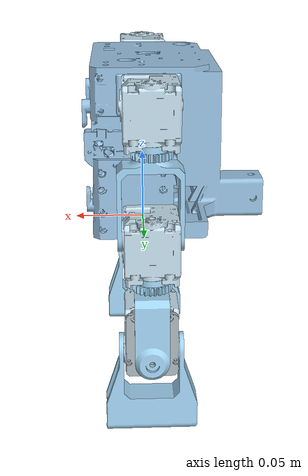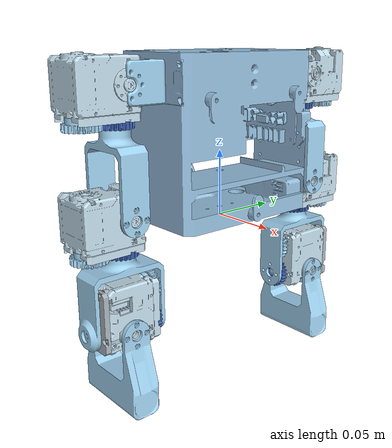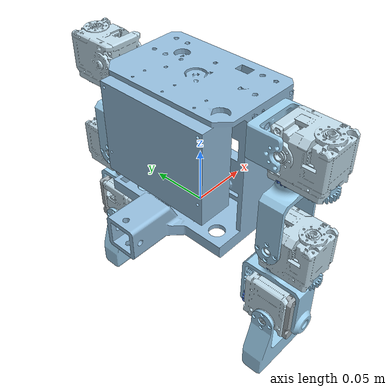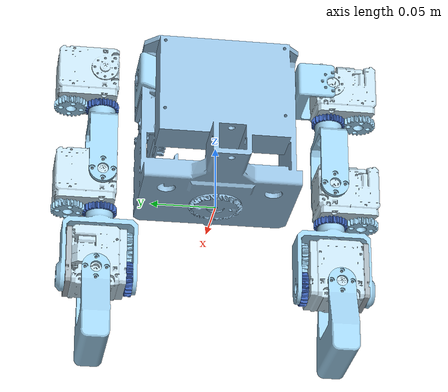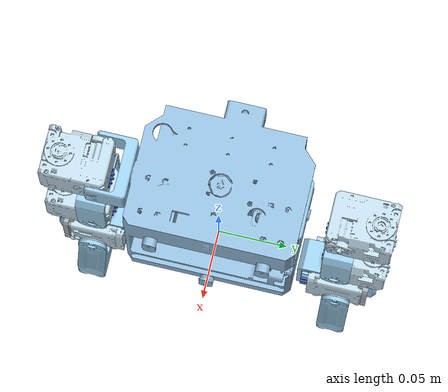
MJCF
<mujoco model="toddlerbot_arms_vis_scene">
    <include file="toddlerbot_arms_vis.xml" />
    <statistic center="0 0 -0.05" extent="0.6" />
    <visual>
        <headlight diffuse="0.6 0.6 0.6" ambient="0.3 0.3 0.3" specular="0 0 0" />
        <rgba haze="0.15 0.25 0.35 1" />
        <global azimuth="160" elevation="-20" offwidth="1280" offheight="720" />
    </visual>
    <worldbody>
        <light pos="0 0 1.5" dir="0 0 -1" directional="true" />
        <camera name="perspective" pos="0.7 -0.7 0.35" xyaxes="1 1 0 -1 1 3" mode="trackcom" />
        <camera name="side" pos="0 -1 0.25" xyaxes="1 0 0 0 1 3" mode="trackcom" />
        <camera name="top" pos="0 0 0.65" xyaxes="0 1 0 -1 0 0" mode="trackcom" />
        <camera name="front" pos="1 0 0.25" xyaxes="0 1 0 -1 0 3" mode="trackcom" />
    </worldbody>
</mujoco>

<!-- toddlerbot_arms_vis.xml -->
<mujoco model="toddlerbot_arms">
  <compiler angle="radian" autolimits="true" />

  <asset>
    <mesh name="torso_visual" file="../assemblies/toddlerbot_arms/meshes/torso_visual.stl" />
    <mesh name="left_sho_pitch_link_visual" file="../assemblies/left_arm_hand/meshes/left_sho_pitch_link_visual.stl" />
    <mesh name="left_2xl430_gears_visual" file="../assemblies/left_arm_hand/meshes/left_2xl430_gears_visual.stl" />
    <mesh name="left_spur_1m_24t_drive_visual" file="../assemblies/left_arm_hand/meshes/left_spur_1m_24t_drive_visual.stl" />
    <mesh name="left_spur_1m_24t_driven_visual" file="../assemblies/left_arm_hand/meshes/left_spur_1m_24t_driven_visual.stl" />
    <mesh name="left_sho_yaw_link_visual" file="../assemblies/left_arm_hand/meshes/left_sho_yaw_link_visual.stl" />
    <mesh name="left_2xl430_gears_2_visual" file="../assemblies/left_arm_hand/meshes/left_2xl430_gears_2_visual.stl" />
    <mesh name="left_spur_1m_24t_drive_2_visual" file="../assemblies/left_arm_hand/meshes/left_spur_1m_24t_drive_2_visual.stl" />
    <mesh name="left_spur_1m_24t_driven_2_visual" file="../assemblies/left_arm_hand/meshes/left_spur_1m_24t_driven_2_visual.stl" />
    <mesh name="left_elb_yaw_link_visual" file="../assemblies/left_arm_hand/meshes/left_elb_yaw_link_visual.stl" />
    <mesh name="left_spur_1m_24t_driven_3_visual" file="../assemblies/left_arm_hand/meshes/left_spur_1m_24t_driven_3_visual.stl" />
    <mesh name="left_2xl430_gears_3_visual" file="../assemblies/left_arm_hand/meshes/left_2xl430_gears_3_visual.stl" />
    <mesh name="left_spur_1m_24t_drive_3_visual" file="../assemblies/left_arm_hand/meshes/left_spur_1m_24t_drive_3_visual.stl" />
    <mesh name="left_hand_visual" file="../assemblies/left_arm_hand/meshes/left_hand_visual.stl" />
    <mesh name="left_wrist_bearing_plate_visual" file="../assemblies/left_arm_hand/meshes/left_wrist_bearing_plate_visual.stl" />
    <mesh name="right_sho_pitch_link_visual" file="../assemblies/right_arm_hand/meshes/right_sho_pitch_link_visual.stl" />
    <mesh name="right_2xl430_gears_visual" file="../assemblies/right_arm_hand/meshes/right_2xl430_gears_visual.stl" />
    <mesh name="right_spur_1m_24t_drive_visual" file="../assemblies/right_arm_hand/meshes/right_spur_1m_24t_drive_visual.stl" />
    <mesh name="right_spur_1m_24t_driven_visual" file="../assemblies/right_arm_hand/meshes/right_spur_1m_24t_driven_visual.stl" />
    <mesh name="right_sho_yaw_link_visual" file="../assemblies/right_arm_hand/meshes/right_sho_yaw_link_visual.stl" />
    <mesh name="right_2xl430_gears_2_visual" file="../assemblies/right_arm_hand/meshes/right_2xl430_gears_2_visual.stl" />
    <mesh name="right_spur_1m_24t_drive_2_visual" file="../assemblies/right_arm_hand/meshes/right_spur_1m_24t_drive_2_visual.stl" />
    <mesh name="right_spur_1m_24t_driven_2_visual" file="../assemblies/right_arm_hand/meshes/right_spur_1m_24t_driven_2_visual.stl" />
    <mesh name="right_elb_yaw_link_visual" file="../assemblies/right_arm_hand/meshes/right_elb_yaw_link_visual.stl" />
    <mesh name="right_spur_1m_24t_driven_3_visual" file="../assemblies/right_arm_hand/meshes/right_spur_1m_24t_driven_3_visual.stl" />
    <mesh name="right_2xl430_gears_3_visual" file="../assemblies/right_arm_hand/meshes/right_2xl430_gears_3_visual.stl" />
    <mesh name="right_spur_1m_24t_drive_3_visual" file="../assemblies/right_arm_hand/meshes/right_spur_1m_24t_drive_3_visual.stl" />
    <mesh name="right_hand_visual" file="../assemblies/right_arm_hand/meshes/right_hand_visual.stl" />
    <mesh name="right_wrist_bearing_plate_visual" file="../assemblies/right_arm_hand/meshes/right_wrist_bearing_plate_visual.stl" />
  </asset>

  <worldbody>
    <geom type="mesh" rgba="0.579662 0.741255 0.863591 1" mesh="torso_visual" class="visual" />
    <body name="sho_pitch_link" pos="-0.003 0.062 0.104237" quat="0.707107 -0.707107 0 0">
      <inertial pos="5.82542e-11 -5.12646e-05 0.00824408" quat="0.0155166 0.706937 0.0155166 0.706937" mass="0.0086" diaginertia="3.08064e-06 2.9104e-06 1.22729e-06" />
      <joint name="left_sho_pitch" pos="0 0 0" axis="0 0 1" range="-3.14159 1.5708" damping="0.127" armature="0.004" frictionloss="0.069" />
      <geom type="mesh" rgba="0.615686 0.811765 0.929412 1" mesh="left_sho_pitch_link_visual" class="visual" />
      <body name="2xl430_gears" pos="-0.019 0.001 0.027" quat="0 -0.707107 0 0.707107">
        <inertial pos="-0.0115932 -0.00242388 -0.0185511" quat="-0.0177754 0.697807 -0.134615 0.703298" mass="0.118" diaginertia="3.59197e-05 3.28027e-05 2.73617e-05" />
        <joint name="left_sho_roll" pos="0 0 0" axis="0 0 1" range="-1.5708 0.349066" damping="0.12" armature="0.0042" frictionloss="0.292" />
        <geom type="mesh" rgba="0.75606 0.858047 0.913203 1" mesh="left_2xl430_gears_visual" class="visual" />
        <body name="spur_1m_24t_drive" pos="-0.024 -0.019 -0.019" quat="0.707107 0.707107 0 0">
          <inertial pos="0 0 0.00479491" quat="0.5 0.5 -0.5 0.5" mass="0.0032" diaginertia="2.38389e-07 1.40193e-07 1.40193e-07" />
          <joint name="left_sho_yaw_drive" pos="0 0 0" axis="0 0 1" range="-2.61799 2.61799" damping="0.12" armature="0.0042" frictionloss="0.292" />
          <geom type="mesh" rgba="0.615686 0.811765 0.929412 1" mesh="left_spur_1m_24t_drive_visual" class="visual" />
        </body>
        <body name="spur_1m_24t_driven" pos="-3.58071e-10 -0.027 -0.019" quat="0.707107 0.707107 0 0">
          <inertial pos="0 0 0.0216847" mass="0.0172" diaginertia="1.08489e-05 7.45531e-06 4.71043e-06" />
          <joint name="left_sho_yaw_driven" pos="0 0 0" axis="0 0 1" range="-2.61799 2.61799" damping="0.0" armature="0.0" frictionloss="0.0" />
          <geom type="mesh" rgba="0.231373 0.380392 0.705882 1" mesh="left_spur_1m_24t_driven_visual" class="visual" />
          <geom pos="0 0 0.0016" quat="0 1 0 0" type="mesh" rgba="0.615686 0.811765 0.929412 1" mesh="left_sho_yaw_link_visual" class="visual" />
          <body name="2xl430_gears_2" pos="0 0.019 0.0606" quat="-0.707107 0.707107 0 0">
            <inertial pos="-0.0115932 -0.00242388 -0.0185511" quat="-0.0177754 0.697807 -0.134615 0.703298" mass="0.118" diaginertia="3.59197e-05 3.28027e-05 2.73617e-05" />
            <joint name="left_elbow_roll" pos="0 0 0" axis="0 0 1" range="-1.91986 2.44346" damping="0.12" armature="0.0042" frictionloss="0.292" />
            <geom type="mesh" rgba="0.75606 0.858047 0.913203 1" mesh="left_2xl430_gears_2_visual" class="visual" />
            <body name="spur_1m_24t_drive_2" pos="-0.024 -0.019 -0.019" quat="0.707107 0.707107 0 0">
              <inertial pos="0 0 0.00479491" quat="0.5 0.5 -0.5 0.5" mass="0.0032" diaginertia="2.38389e-07 1.40193e-07 1.40193e-07" />
              <joint name="left_elbow_yaw_drive" pos="0 0 0" axis="0 0 1" range="-2.61799 2.61799" damping="0.12" armature="0.0042" frictionloss="0.292" />
              <geom type="mesh" rgba="0.615686 0.811765 0.929412 1" mesh="left_spur_1m_24t_drive_2_visual" class="visual" />
            </body>
            <body name="spur_1m_24t_driven_2" pos="-3.58064e-10 -0.027 -0.019" quat="0.5 0.5 0.5 -0.5">
              <inertial pos="4.05998e-08 0.00116422 0.0253227" quat="0.939794 -0.341741 0 0" mass="0.0229" diaginertia="1.98349e-05 1.15991e-05 1.01946e-05" />
              <joint name="left_elbow_yaw_driven" pos="0 0 0" axis="0 0 1" range="-2.61799 2.61799" damping="0.0" armature="0.0" frictionloss="0.0" />
              <geom type="mesh" rgba="0.231373 0.380392 0.705882 1" mesh="left_spur_1m_24t_driven_2_visual" class="visual" />
              <geom pos="0 0 0.0016" quat="0 -1 0 0" type="mesh" rgba="0.615686 0.811765 0.929412 1" mesh="left_elb_yaw_link_visual" class="visual" />
              <geom pos="0 0.0253 0.0536" quat="0.5 -0.5 0.5 0.5" type="mesh" rgba="0.231373 0.380392 0.705882 1" mesh="left_spur_1m_24t_driven_3_visual" class="visual" />
              <body name="2xl430_gears_3" pos="0 0.0237 0.0536" quat="0.707107 -0.707107 0 0">
                <inertial pos="0.000431007 0.0114333 -0.0254637" quat="0.74781 0.660979 -0.0438307 0.0443286" mass="0.1229" diaginertia="3.89724e-05 3.40456e-05 3.02845e-05" />
                <joint name="left_wrist_pitch_driven" pos="0 0 0" axis="0 0 1" range="-1.39626 1.91986" damping="0.0" armature="0.0" frictionloss="0.0" />
                <geom type="mesh" rgba="0.75606 0.858047 0.913203 1" mesh="left_2xl430_gears_3_visual" class="visual" />
                <geom pos="0.0155 0 -0.045" quat="0.707107 0 0 -0.707107" type="mesh" rgba="0.644963 0.690118 0.717068 1" mesh="left_wrist_bearing_plate_visual" class="visual" />
                <body name="spur_1m_24t_drive_3" pos="-1.52441e-10 0.024 -0.008" quat="0.707107 0 0 -0.707107">
                  <inertial pos="0 0 0.00479491" quat="0.5 0.5 -0.5 0.5" mass="0.0032" diaginertia="2.38389e-07 1.40193e-07 1.40193e-07" />
                  <joint name="left_wrist_pitch_drive" pos="0 0 0" axis="0 0 1" range="-1.91986 1.39626" damping="0.12" armature="0.0042" frictionloss="0.292" />
                  <geom type="mesh" rgba="0.615686 0.811765 0.929412 1" mesh="left_spur_1m_24t_drive_3_visual" class="visual" />
                </body>
                <body name="hand" pos="0.019 -3.58081e-10 -0.027" quat="0.707107 0 0.707107 0">
                  <inertial pos="-2.48995e-10 -0.0405945 -0.0194791" quat="0.999993 0.00372141 0 0" mass="0.017" diaginertia="9.21876e-06 6.67202e-06 3.77871e-06" />
                  <joint name="left_wrist_roll" pos="0 0 0" axis="0 0 1" range="-1.91986 1.39626" damping="0.12" armature="0.0042" frictionloss="0.292" />
                  <geom type="mesh" rgba="0.615686 0.811765 0.929412 1" mesh="left_hand_visual" class="visual" />
                </body>
              </body>
            </body>
          </body>
        </body>
      </body>
    </body>
    <body name="sho_pitch_link_2" pos="-0.003 -0.062 0.104237" quat="0 0 0.707107 -0.707107">
      <inertial pos="5.82542e-11 -5.12646e-05 0.00824408" quat="0.0155166 0.706937 0.0155166 0.706937" mass="0.0086" diaginertia="3.08064e-06 2.9104e-06 1.22729e-06" />
      <joint name="right_sho_pitch" pos="0 0 0" axis="0 0 1" range="-1.5708 3.14159" damping="0.127" armature="0.004" frictionloss="0.069" />
      <geom type="mesh" rgba="0.615686 0.811765 0.929412 1" mesh="right_sho_pitch_link_visual" class="visual" />
      <body name="2xl430_gears_4" pos="-0.019 0.001 0.027" quat="0 -0.707107 0 0.707107">
        <inertial pos="-0.0115932 -0.00242388 -0.0185511" quat="-0.0177754 0.697807 -0.134615 0.703298" mass="0.118" diaginertia="3.59197e-05 3.28027e-05 2.73617e-05" />
        <joint name="right_sho_roll" pos="0 0 0" axis="0 0 1" range="-1.5708 0.349066" damping="0.12" armature="0.0042" frictionloss="0.292" />
        <geom type="mesh" rgba="0.75606 0.858047 0.913203 1" mesh="right_2xl430_gears_visual" class="visual" />
        <body name="spur_1m_24t_drive_4" pos="-0.024 -0.019 -0.019" quat="0.707107 0.707107 0 0">
          <inertial pos="0 0 0.00479491" quat="0.5 0.5 -0.5 0.5" mass="0.0032" diaginertia="2.38389e-07 1.40193e-07 1.40193e-07" />
          <joint name="right_sho_yaw_drive" pos="0 0 0" axis="0 0 1" range="-2.61799 2.61799" damping="0.12" armature="0.0042" frictionloss="0.292" />
          <geom type="mesh" rgba="0.615686 0.811765 0.929412 1" mesh="right_spur_1m_24t_drive_visual" class="visual" />
        </body>
        <body name="spur_1m_24t_driven_4" pos="-3.58068e-10 -0.027 -0.019" quat="0.707107 0.707107 0 0">
          <inertial pos="0 0 0.0216847" mass="0.0172" diaginertia="1.08489e-05 7.45531e-06 4.71043e-06" />
          <joint name="right_sho_yaw_driven" pos="0 0 0" axis="0 0 1" range="-2.61799 2.61799" damping="0.0" armature="0.0" frictionloss="0.0" />
          <geom type="mesh" rgba="0.231373 0.380392 0.705882 1" mesh="right_spur_1m_24t_driven_visual" class="visual" />
          <geom pos="0 0 0.0016" quat="0 1 0 0" type="mesh" rgba="0.615686 0.811765 0.929412 1" mesh="right_sho_yaw_link_visual" class="visual" />
          <body name="2xl430_gears_5" pos="0 0.019 0.0606" quat="-0.707107 0.707107 0 0">
            <inertial pos="-0.0115932 -0.00242388 -0.0185511" quat="-0.0177754 0.697807 -0.134615 0.703298" mass="0.118" diaginertia="3.59197e-05 3.28027e-05 2.73617e-05" />
            <joint name="right_elbow_roll" pos="0 0 0" axis="0 0 1" range="-1.91986 2.44346" damping="0.12" armature="0.0042" frictionloss="0.292" />
            <geom type="mesh" rgba="0.75606 0.858047 0.913203 1" mesh="right_2xl430_gears_2_visual" class="visual" />
            <body name="spur_1m_24t_drive_5" pos="-0.024 -0.019 -0.019" quat="0.707107 0.707107 0 0">
              <inertial pos="0 0 0.00479491" quat="0.5 0.5 -0.5 0.5" mass="0.0032" diaginertia="2.38389e-07 1.40193e-07 1.40193e-07" />
              <joint name="right_elbow_yaw_drive" pos="0 0 0" axis="0 0 1" range="-2.61799 2.61799" damping="0.12" armature="0.0042" frictionloss="0.292" />
              <geom type="mesh" rgba="0.615686 0.811765 0.929412 1" mesh="right_spur_1m_24t_drive_2_visual" class="visual" />
            </body>
            <body name="spur_1m_24t_driven_5" pos="-3.58071e-10 -0.027 -0.019" quat="0.707107 0.707107 0 0">
              <inertial pos="0.00116422 -4.05998e-08 0.0253227" quat="0.664535 0.241647 0.241647 0.664535" mass="0.0229" diaginertia="1.98349e-05 1.15991e-05 1.01946e-05" />
              <joint name="right_elbow_yaw_driven" pos="0 0 0" axis="0 0 1" range="-2.61799 2.61799" damping="0.0" armature="0.0" frictionloss="0.0" />
              <geom type="mesh" rgba="0.231373 0.380392 0.705882 1" mesh="right_spur_1m_24t_driven_2_visual" class="visual" />
              <geom pos="0 0 0.0016" quat="0 -0.707107 0.707107 0" type="mesh" rgba="0.615686 0.811765 0.929412 1" mesh="right_elb_yaw_link_visual" class="visual" />
              <geom pos="0.0253 0 0.0536" quat="0 -0.707107 0 -0.707107" type="mesh" rgba="0.231373 0.380392 0.705882 1" mesh="right_spur_1m_24t_driven_3_visual" class="visual" />
              <body name="2xl430_gears_6" pos="0.0237 0 0.0536" quat="0.5 -0.5 0.5 -0.5">
                <inertial pos="0.000431007 0.0114333 -0.0254637" quat="0.74781 0.660979 -0.0438307 0.0443286" mass="0.1229" diaginertia="3.89724e-05 3.40456e-05 3.02845e-05" />
                <joint name="right_wrist_pitch_driven" pos="0 0 0" axis="0 0 1" range="-1.91986 1.39626" damping="0.0" armature="0.0" frictionloss="0.0" />
                <geom type="mesh" rgba="0.75606 0.858047 0.913203 1" mesh="right_2xl430_gears_3_visual" class="visual" />
                <geom pos="0.0155 0 -0.045" quat="0.707107 0 0 -0.707107" type="mesh" rgba="0.644963 0.690118 0.717068 1" mesh="right_wrist_bearing_plate_visual" class="visual" />
                <body name="spur_1m_24t_drive_6" pos="-1.52443e-10 0.024 -0.008" quat="0.707107 0 0 -0.707107">
                  <inertial pos="0 0 0.00479491" quat="0.5 0.5 -0.5 0.5" mass="0.0032" diaginertia="2.38389e-07 1.40193e-07 1.40193e-07" />
                  <joint name="right_wrist_pitch_drive" pos="0 0 0" axis="0 0 1" range="-1.39626 1.91986" damping="0.12" armature="0.0042" frictionloss="0.292" />
                  <geom type="mesh" rgba="0.615686 0.811765 0.929412 1" mesh="right_spur_1m_24t_drive_3_visual" class="visual" />
                </body>
                <body name="hand_2" pos="0.019 -3.58068e-10 -0.027" quat="0 -0.707107 0 -0.707107">
                  <inertial pos="-2.48995e-10 0.0405945 -0.0185209" quat="0.999993 0.00372141 0 0" mass="0.017" diaginertia="9.21876e-06 6.67202e-06 3.77871e-06" />
                  <joint name="right_wrist_roll" pos="0 0 0" axis="0 0 1" range="-1.39626 1.91986" damping="0.12" armature="0.0042" frictionloss="0.292" />
                  <geom type="mesh" rgba="0.615686 0.811765 0.929412 1" mesh="right_hand_visual" class="visual" />
                </body>
              </body>
            </body>
          </body>
        </body>
      </body>
    </body>
  </worldbody>
  <option>
    <flag eulerdamp="disable" />
  </option>
  <equality>
    <joint joint1="left_sho_yaw_driven" joint2="left_sho_yaw_drive" polycoef="0 -1.0 0 0 0" solimp="0.9999 0.9999 0.001 0.5 2" solref="0.004 1" />
    <joint joint1="left_elbow_yaw_driven" joint2="left_elbow_yaw_drive" polycoef="0 -1.0 0 0 0" solimp="0.9999 0.9999 0.001 0.5 2" solref="0.004 1" />
    <joint joint1="left_wrist_pitch_driven" joint2="left_wrist_pitch_drive" polycoef="0 -1.0 0 0 0" solimp="0.9999 0.9999 0.001 0.5 2" solref="0.004 1" />
    <joint joint1="right_sho_yaw_driven" joint2="right_sho_yaw_drive" polycoef="0 -1.0 0 0 0" solimp="0.9999 0.9999 0.001 0.5 2" solref="0.004 1" />
    <joint joint1="right_elbow_yaw_driven" joint2="right_elbow_yaw_drive" polycoef="0 -1.0 0 0 0" solimp="0.9999 0.9999 0.001 0.5 2" solref="0.004 1" />
    <joint joint1="right_wrist_pitch_driven" joint2="right_wrist_pitch_drive" polycoef="0 -1.0 0 0 0" solimp="0.9999 0.9999 0.001 0.5 2" solref="0.004 1" />
  </equality>
  <keyframe>
    <key name="home" qpos="0.174533 -0.261799 1.0472 -1.0472 0.523599 -1.0472 1.0472 1.309 -1.309 0 -0.174533 -0.261799 -1.0472 1.0472 0.523599 1.0472 -1.0472 -1.309 1.309 0" />
  </keyframe>
  <contact />
  <actuator>
    <position name="left_sho_pitch" joint="left_sho_pitch" kp="16.40625" ctrlrange="-3.14159 1.5708" class="XC430" />
    <position name="left_sho_roll" joint="left_sho_roll" kp="16.40625" ctrlrange="-1.5708 0.349066" class="2XL430" />
    <position name="left_sho_yaw_drive" joint="left_sho_yaw_drive" kp="16.40625" ctrlrange="-2.61799 2.61799" class="2XL430" />
    <position name="left_elbow_roll" joint="left_elbow_roll" kp="16.40625" ctrlrange="-1.91986 2.44346" class="2XL430" />
    <position name="left_elbow_yaw_drive" joint="left_elbow_yaw_drive" kp="16.40625" ctrlrange="-2.61799 2.61799" class="2XL430" />
    <position name="left_wrist_pitch_drive" joint="left_wrist_pitch_drive" kp="16.40625" ctrlrange="-1.91986 1.39626" class="2XL430" />
    <position name="left_wrist_roll" joint="left_wrist_roll" kp="16.40625" ctrlrange="-1.91986 1.39626" class="2XL430" />
    <position name="right_sho_pitch" joint="right_sho_pitch" kp="16.40625" ctrlrange="-1.5708 3.14159" class="XC430" />
    <position name="right_sho_roll" joint="right_sho_roll" kp="16.40625" ctrlrange="-1.5708 0.349066" class="2XL430" />
    <position name="right_sho_yaw_drive" joint="right_sho_yaw_drive" kp="16.40625" ctrlrange="-2.61799 2.61799" class="2XL430" />
    <position name="right_elbow_roll" joint="right_elbow_roll" kp="16.40625" ctrlrange="-1.91986 2.44346" class="2XL430" />
    <position name="right_elbow_yaw_drive" joint="right_elbow_yaw_drive" kp="16.40625" ctrlrange="-2.61799 2.61799" class="2XL430" />
    <position name="right_wrist_pitch_drive" joint="right_wrist_pitch_drive" kp="16.40625" ctrlrange="-1.39626 1.91986" class="2XL430" />
    <position name="right_wrist_roll" joint="right_wrist_roll" kp="16.40625" ctrlrange="-1.39626 1.91986" class="2XL430" />
  </actuator>
  <default>
    <geom type="mesh" solref="0.004 1" />
    <default class="visual">
      <geom type="mesh" contype="0" conaffinity="0" group="2" />
    </default>
    <default class="collision">
      <geom group="3" />
    </default>
    <default class="XC430">
      <position forcerange="-2 2" />
    </default>
    <default class="2XL430">
      <position forcerange="-2 2" />
    </default>
  </default>
</mujoco>
